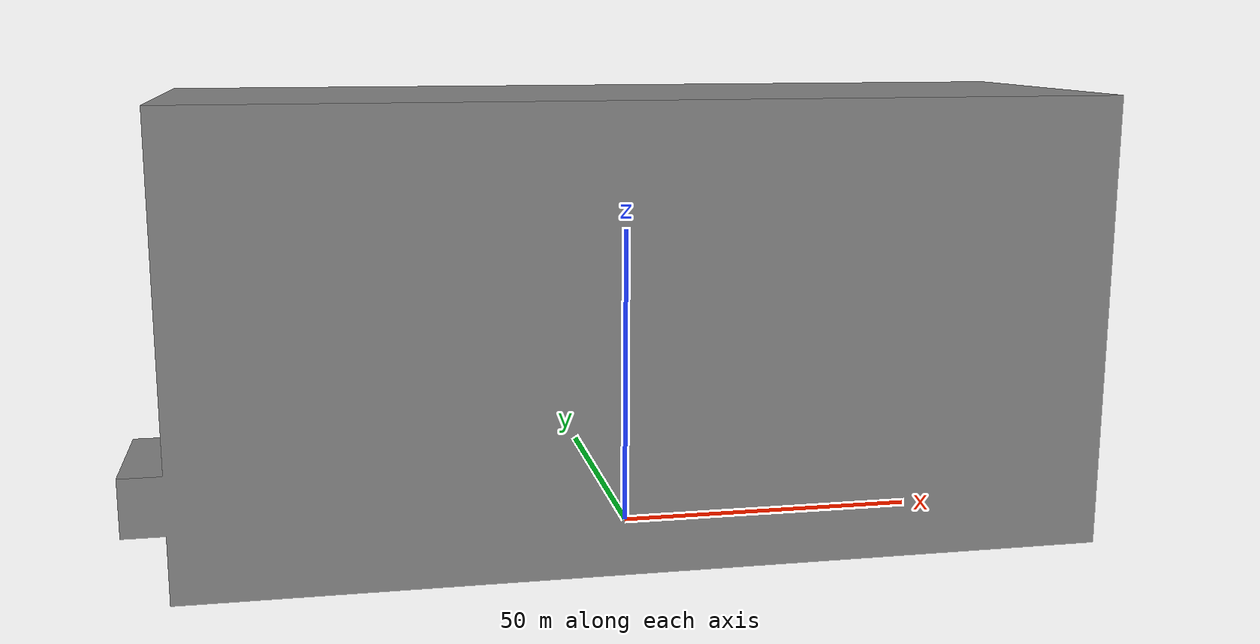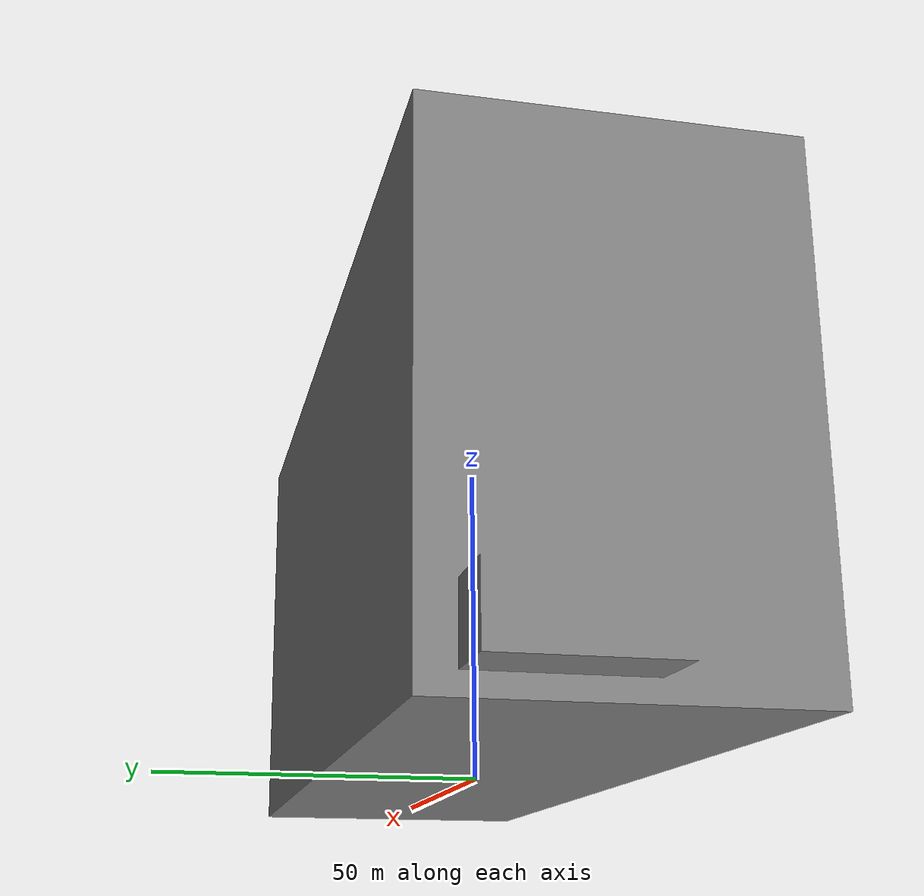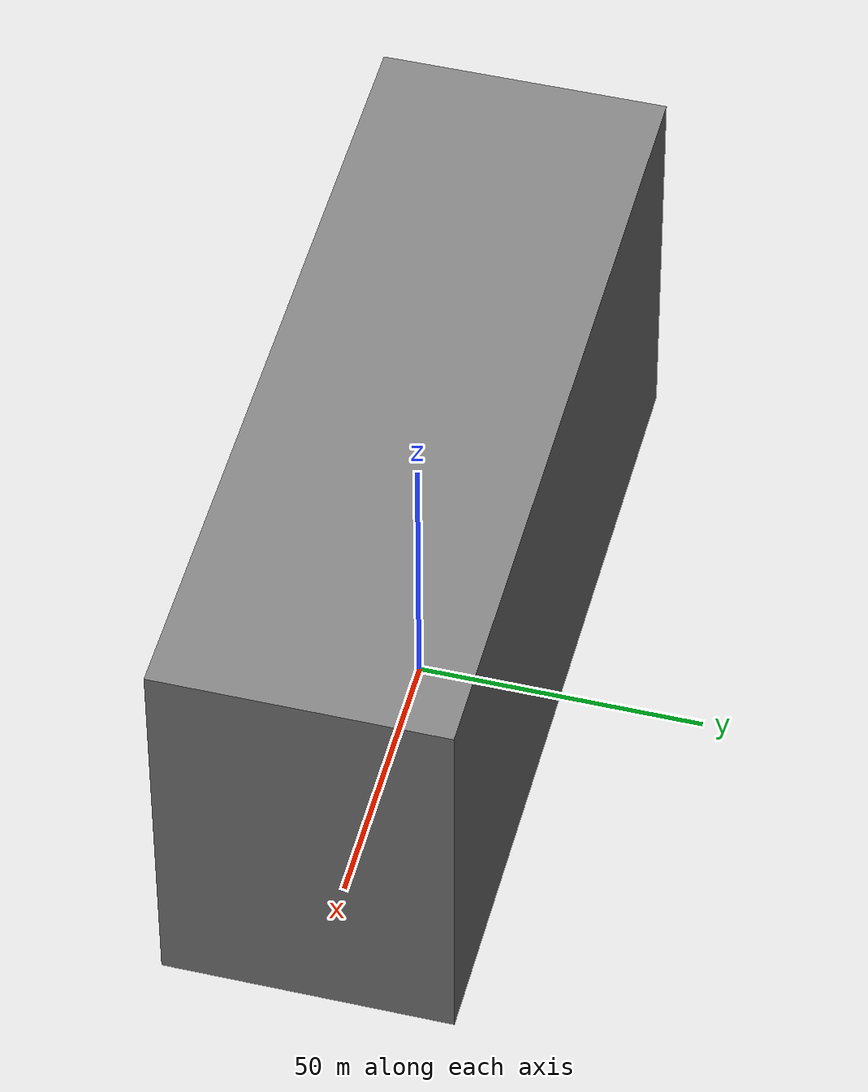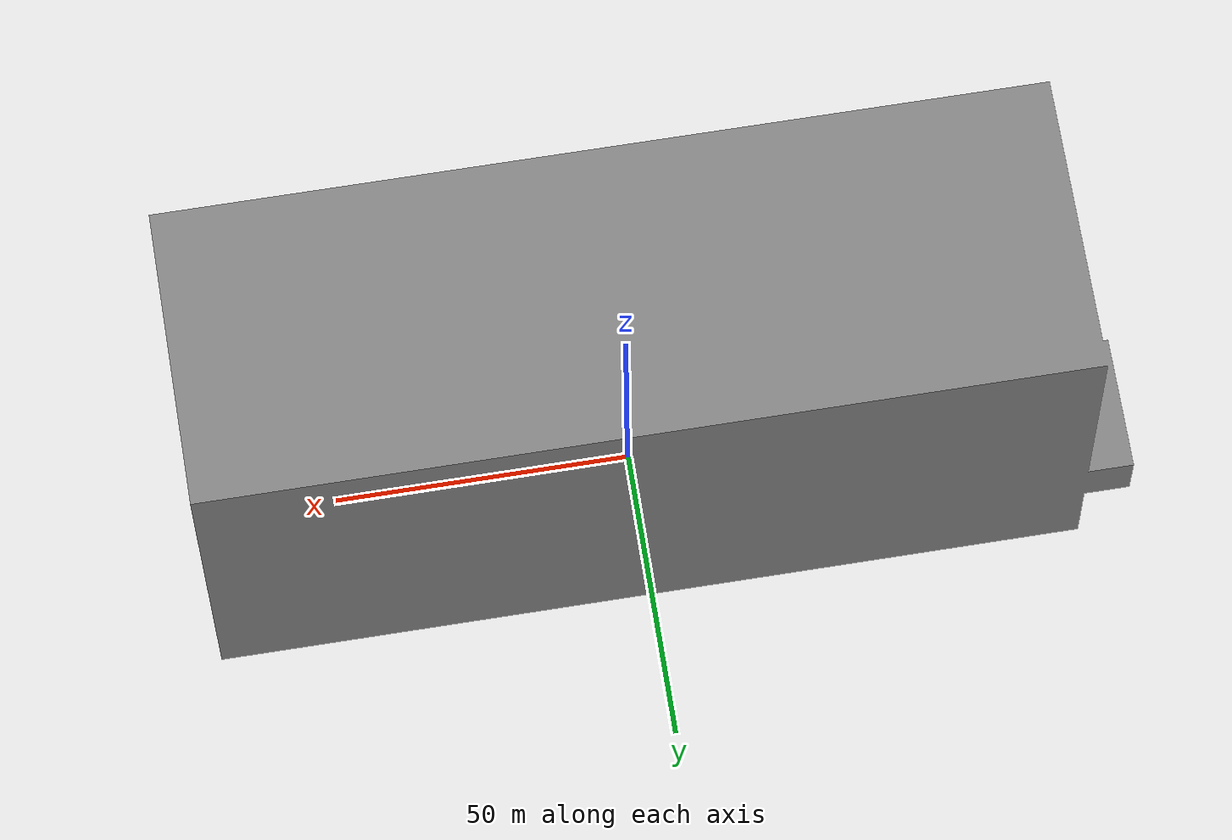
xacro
<?xml version="1.0"?>
<robot name="wsg50" xmlns:xacro="http://www.ros.org/wiki/xacro">

  <!-- Import wsg50 macro -->
  <xacro:include filename="$(find sun_wsg50_simulation)/urdf/wsg50.xacro" />

  <xacro:wsg50
    prefix="''"
    scale="1.0"
    base_link="base_link"
    mimic_joints="true"
    prefix_finger_left="left/"
    finger_flange_left_link="finger_flange_link"
    prefix_finger_right="right/"
    finger_flange_right_link="finger_flange_link"
  />

</robot>

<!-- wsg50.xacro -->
<robot xmlns:xacro="http://www.ros.org/wiki/xacro">

<!-- Import finger flange macros -->
<xacro:include filename="$(find sun_wsg50_simulation)/urdf/finger_flange.xacro" />

<xacro:macro
    name="wsg50"
    params="
        prefix:=''
        scale:=1.0
        base_link:=base_link
        mimic_joints:=true
        prefix_finger_left:=left/
        finger_flange_left_link:=finger_flange_link
        prefix_finger_right:=right/
        finger_flange_right_link:=finger_flange_link
        "
>

    <!-- cad_scale to convert from cad to [m] -->
    <xacro:property name="cad_scale" value="1.0"/>
    <!-- local_scale cad to input scale -->
    <xacro:property name="local_scale" value="${cad_scale*scale}"/>
    <!-- origin of mesh wrt link frame -->
    <xacro:property name="wsg50_110_mesh_origin">
        <origin
            xyz="${0.0*local_scale} ${0.0*local_scale} ${0.0*local_scale}"
            rpy="${0.0} ${0.0} ${0.0}"
        />
    </xacro:property>

    <!-- WSG50 base_link of the gripper -->
    <link name="${prefix}${base_link}">
        <visual>
            <xacro:insert_block name="wsg50_110_mesh_origin" />
            <geometry>
                <mesh
                    filename="package://sun_wsg50_simulation/meshes/visual/WSG50_110.stl"
                    scale="${local_scale} ${local_scale} ${local_scale}"
                />
            </geometry>
            <material name="gray">
                <color rgba="0.5 0.5 0.5 1"/>
            </material>
        </visual>
        <collision>
            <xacro:insert_block name="wsg50_110_mesh_origin" />
            <geometry>
                <mesh
                    filename="package://sun_wsg50_simulation/meshes/collision/WSG50_110.stl"
                    scale="${local_scale} ${local_scale} ${local_scale}"
                />
            </geometry>
        </collision>
    </link> <!-- end wsg50 base link -->

    <!-- check if I must mimic the joints -->
    <xacro:if value="${mimic_joints}">
        <!-- mimic the joints -> create a fake 1dof joint -->
        <xacro:wsg50_1dof_joint
            prefix="${prefix}"
            scale="${scale}"
            joint_name="1dof_joint"
            parent_link="${prefix}${base_link}"
        />
        <!-- prepare the property joint_to_mimic for finger flange macro -->
        <xacro:property name="joint_to_mimic" value="${prefix}1dof_joint"/>
    </xacro:if>
    <xacro:unless value="${mimic_joints}">
        <xacro:property name="joint_to_mimic" value="''"/>
    </xacro:unless>

    <!-- finger flange + link (left) -->
        <!--
            joint_name=default
            limit_sign=default
            mimic_multipler=default
        -->
    <xacro:wsg50_finger_flange_with_joint
        prefix="${prefix}${prefix_finger_left}"
        scale="${scale}"
        parent_link="${prefix}${base_link}"
        joint_to_mimic="${joint_to_mimic}"
        finger_flange_link="${finger_flange_left_link}"
    >
        <origin xyz="0 0 0" rpy="0 0 0"/>
    </xacro:wsg50_finger_flange_with_joint>

    <!-- finger flange + link (right) -->
        <!--
            joint_name=default
            limit_sign=default
            mimic_multipler=default
        -->
    <xacro:wsg50_finger_flange_with_joint
        prefix="${prefix}${prefix_finger_right}"
        scale="${scale}"
        parent_link="${prefix}${base_link}"
        joint_to_mimic="${joint_to_mimic}"
        finger_flange_link="${finger_flange_right_link}"
    >
        <origin xyz="0 0 0" rpy="0 0 ${pi}"/>
    </xacro:wsg50_finger_flange_with_joint>

</xacro:macro> <!-- end macro wsg50 -->

</robot>

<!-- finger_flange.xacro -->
<robot xmlns:xacro="http://www.ros.org/wiki/xacro">

<xacro:property name="finger_joint_limit_lower" value="0.0"/>
<xacro:property name="finger_joint_limit_upper" value="0.110"/>

<xacro:macro
    name="wsg50_finger_flange"
    params="
        base_link:=base_link
        scale:=1.0
        prefix:=''
        "
>

    <!-- cad_scale to convert from cad to [m] -->
    <xacro:property name="cad_scale" value="0.001"/>
    <!-- local_scale cad to input scale -->
    <xacro:property name="local_scale" value="${cad_scale*scale}"/>
    <!-- origin of mesh wrt link frame -->
    <xacro:property name="wsg50_finger_flange_mesh_origin">
        <origin
            xyz="${0.0*local_scale} ${0.0*local_scale} ${0.0*local_scale}"
            rpy="${0.0} ${0.0} ${0.0}"
        />
    </xacro:property>

    <!-- finger flange link -->
    <link name="${prefix}${base_link}">
        <visual>
            <xacro:insert_block name="wsg50_finger_flange_mesh_origin" />
            <geometry>
                <mesh
                    filename="package://sun_wsg50_simulation/meshes/visual/GUIDE_WSG50_110.stl"
                    scale="${local_scale} ${local_scale} ${local_scale}"
                />
            </geometry>
            <material name="black">
                <color rgba="0 0 0 1"/>
            </material>
        </visual>
        <collision>
            <xacro:insert_block name="wsg50_finger_flange_mesh_origin" />
            <geometry>
                <mesh
                    filename="package://sun_wsg50_simulation/meshes/collision/GUIDE_WSG50_110.stl"
                    scale="${local_scale} ${local_scale} ${local_scale}"
                />
            </geometry>
        </collision>
    </link>

</xacro:macro> <!-- end macro finger flange link -->

<xacro:macro
    name="wsg50_finger_flange_with_joint"
    params="
        prefix:=''
        scale:=1.0
        joint_name:=finger_flange_joint
        parent_link:=wsg50/base_link
        finger_flange_link:=finger_flange_link
        joint_to_mimic:=''
        mimic_multipler:=0.5
        limit_sign:=1.0
        *link_origin
        "
>

    <!-- Prismatic joint -->
    <joint name="${prefix}${joint_name}" type="prismatic">
        <parent link="${parent_link}"/>
        <child link="${prefix}${finger_flange_link}"/>
        <xacro:insert_block name="link_origin" />
        <axis xyz="-1 0 0"/>
        <limit
            lower="${limit_sign*(finger_joint_limit_lower/2)*scale}"
            upper="${limit_sign*(finger_joint_limit_upper/2)*scale}"
            effort="1.0" velocity="1.0"
        />
        <xacro:unless value="${joint_to_mimic==''}">
            <mimic joint="${joint_to_mimic}" multiplier="${mimic_multipler}" offset="0" />
        </xacro:unless>
    </joint>

    <!-- finger flange link -->
    <xacro:wsg50_finger_flange
        base_link="${finger_flange_link}"
        scale="${scale}"
        prefix="${prefix}"
    />

</xacro:macro> <!-- end macro finger flange + prismatic joint -->

<!-- MACRO THAT IMPLEMENTS THE REAL SINGLE JOINT OF THE GRIPPER -->
<xacro:macro
    name="wsg50_1dof_joint"
    params="
        prefix:=''
        scale:=1.0
        joint_name:=1dof_joint
        parent_link:=wsg50/base_link
        "
>

    <!-- Prismatic joint -->
    <joint name="${prefix}${joint_name}" type="prismatic">
        <parent link="${parent_link}"/>
        <child link="${prefix}${joint_name}_fake_link"/>
        <limit
            lower="${finger_joint_limit_lower*scale}"
            upper="${finger_joint_limit_upper*scale}"
            effort="1.0" velocity="1.0"
        />
    </joint>

    <!-- fake link -->
    <link name="${prefix}${joint_name}_fake_link"/>

</xacro:macro> <!-- end macro 1dof_joint -->

</robot>
